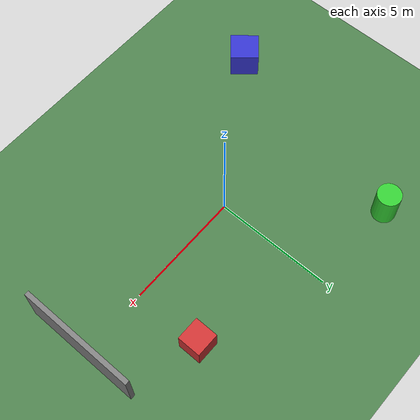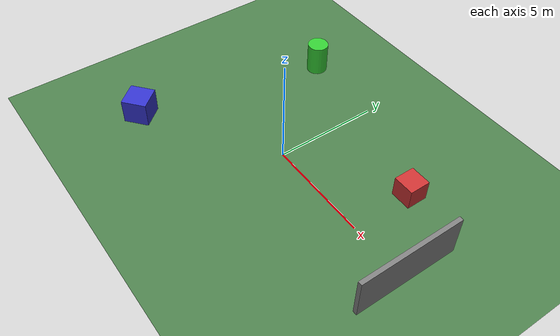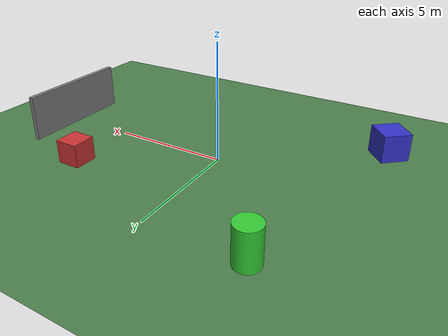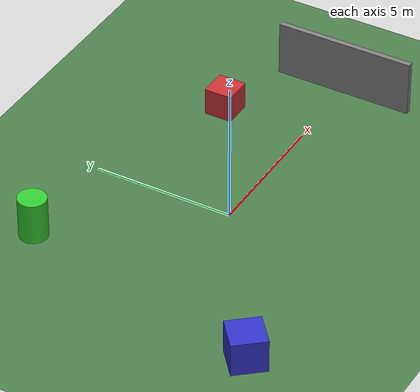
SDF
<?xml version="1.0" ?>
<sdf version="1.8">
  <world name="outdoor_test">

    <!-- Physics -->
    <physics name="1ms" type="ignored">
      <max_step_size>0.001</max_step_size>
      <real_time_factor>1.0</real_time_factor>
    </physics>

    <!-- Plugins -->
    <plugin filename="gz-sim-physics-system" name="gz::sim::systems::Physics"></plugin>
    <plugin filename="gz-sim-user-commands-system" name="gz::sim::systems::UserCommands"></plugin>
    <plugin filename="gz-sim-scene-broadcaster-system" name="gz::sim::systems::SceneBroadcaster"></plugin>
    <plugin filename="gz-sim-sensors-system" name="gz::sim::systems::Sensors">
      <render_engine>ogre2</render_engine>
    </plugin>

    <!-- Lighting -->
    <light type="directional" name="sun">
      <cast_shadows>true</cast_shadows>
      <pose>0 0 10 0 0 0</pose>
      <diffuse>0.8 0.8 0.8 1</diffuse>
      <specular>0.2 0.2 0.2 1</specular>
      <attenuation>
        <range>1000</range>
        <constant>0.9</constant>
        <linear>0.01</linear>
        <quadratic>0.001</quadratic>
      </attenuation>
      <direction>-0.5 0.1 -0.9</direction>
    </light>

    <!-- Ground Plane -->
    <model name="ground_plane">
      <static>true</static>
      <link name="link">
        <collision name="collision">
          <geometry>
            <plane>
              <normal>0 0 1</normal>
              <size>100 100</size>
            </plane>
          </geometry>
        </collision>
        <visual name="visual">
          <geometry>
            <plane>
              <normal>0 0 1</normal>
              <size>100 100</size>
            </plane>
          </geometry>
          <material>
            <ambient>0.3 0.5 0.3 1</ambient>
            <diffuse>0.3 0.5 0.3 1</diffuse>
            <specular>0.1 0.1 0.1 1</specular>
          </material>
        </visual>
      </link>
    </model>

    <!-- Obstacle 1: Box -->
    <model name="obstacle_box1">
      <pose>5 3 0.5 0 0 0</pose>
      <static>true</static>
      <link name="link">
        <collision name="collision">
          <geometry>
            <box>
              <size>1 1 1</size>
            </box>
          </geometry>
        </collision>
        <visual name="visual">
          <geometry>
            <box>
              <size>1 1 1</size>
            </box>
          </geometry>
          <material>
            <ambient>0.8 0.2 0.2 1</ambient>
            <diffuse>0.8 0.2 0.2 1</diffuse>
          </material>
        </visual>
      </link>
    </model>

    <!-- Obstacle 2: Cylinder -->
    <model name="obstacle_cylinder1">
      <pose>-4 5 0.75 0 0 0</pose>
      <static>true</static>
      <link name="link">
        <collision name="collision">
          <geometry>
            <cylinder>
              <radius>0.5</radius>
              <length>1.5</length>
            </cylinder>
          </geometry>
        </collision>
        <visual name="visual">
          <geometry>
            <cylinder>
              <radius>0.5</radius>
              <length>1.5</length>
            </cylinder>
          </geometry>
          <material>
            <ambient>0.2 0.8 0.2 1</ambient>
            <diffuse>0.2 0.8 0.2 1</diffuse>
          </material>
        </visual>
      </link>
    </model>

    <!-- Obstacle 3: Wall -->
    <model name="obstacle_wall1">
      <pose>8 0 1 0 0 0</pose>
      <static>true</static>
      <link name="link">
        <collision name="collision">
          <geometry>
            <box>
              <size>0.2 5 2</size>
            </box>
          </geometry>
        </collision>
        <visual name="visual">
          <geometry>
            <box>
              <size>0.2 5 2</size>
            </box>
          </geometry>
          <material>
            <ambient>0.5 0.5 0.5 1</ambient>
            <diffuse>0.5 0.5 0.5 1</diffuse>
          </material>
        </visual>
      </link>
    </model>

    <!-- Obstacle 4: Another Box -->
    <model name="obstacle_box2">
      <pose>-6 -4 0.6 0 0 0.7</pose>
      <static>true</static>
      <link name="link">
        <collision name="collision">
          <geometry>
            <box>
              <size>1.2 1.2 1.2</size>
            </box>
          </geometry>
        </collision>
        <visual name="visual">
          <geometry>
            <box>
              <size>1.2 1.2 1.2</size>
            </box>
          </geometry>
          <material>
            <ambient>0.2 0.2 0.8 1</ambient>
            <diffuse>0.2 0.2 0.8 1</diffuse>
          </material>
        </visual>
      </link>
    </model>

  </world>
</sdf>
